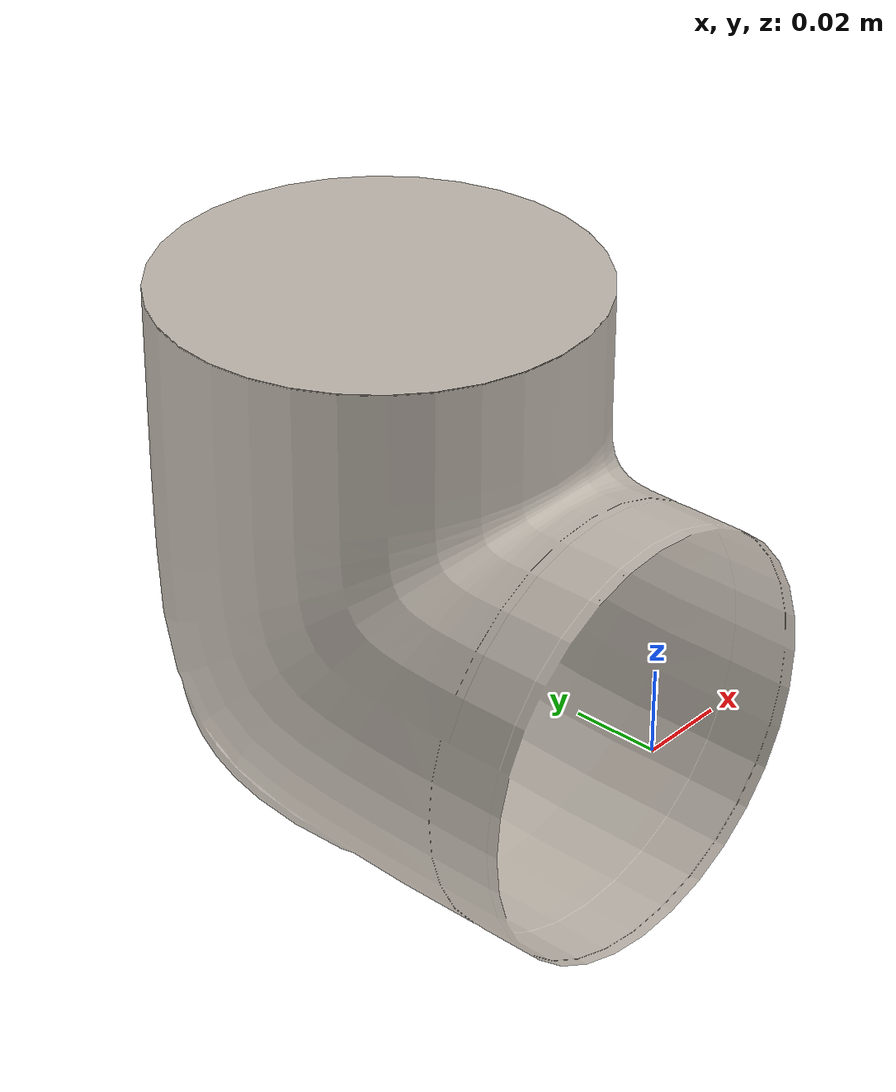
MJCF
<mujoco model="wrist1">
  <default>
    <default class="visual">
      <geom group="2" type="mesh" contype="0" conaffinity="0"/>
    </default>
    <default class="collision">
      <geom group="3" type="mesh"/>
    </default>
  </default>
  <asset>
    <texture type="2d" name="UR20_DIFF_8bit_2K" file="UR20_DIFF_8bit_2K.png"/>
    <material name="UR20_DIFF_8bit_2K_png.002" texture="UR20_DIFF_8bit_2K" specular="0.0" shininess="0.25"/>
    <mesh file="wrist1.obj"/>
  </asset>
  <worldbody>
    <body name="wrist1">
      <geom material="UR20_DIFF_8bit_2K_png.002" mesh="wrist1" class="visual"/>
      <geom mesh="wrist1" class="collision"/>
    </body>
  </worldbody>
</mujoco>
